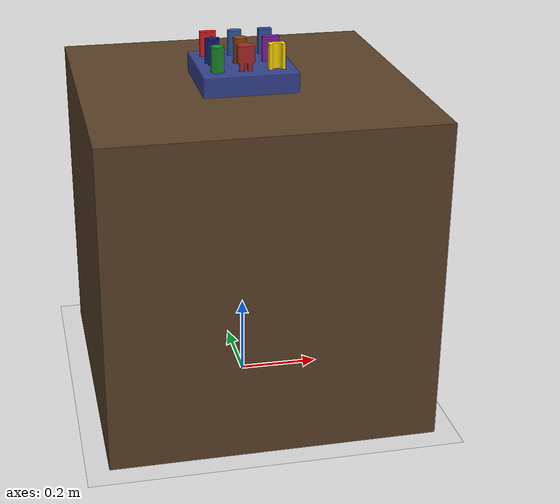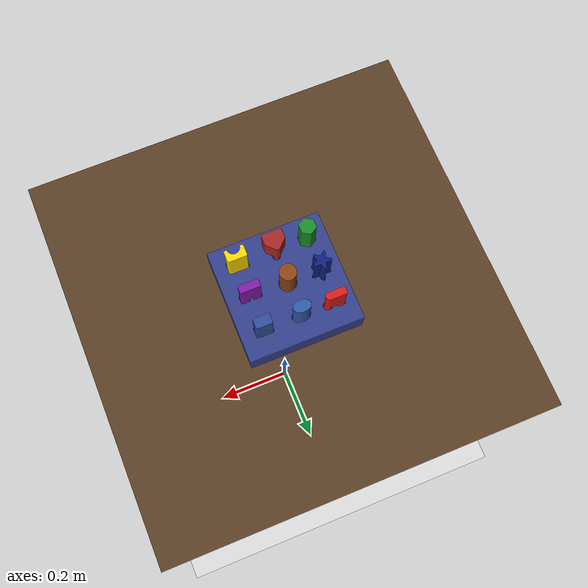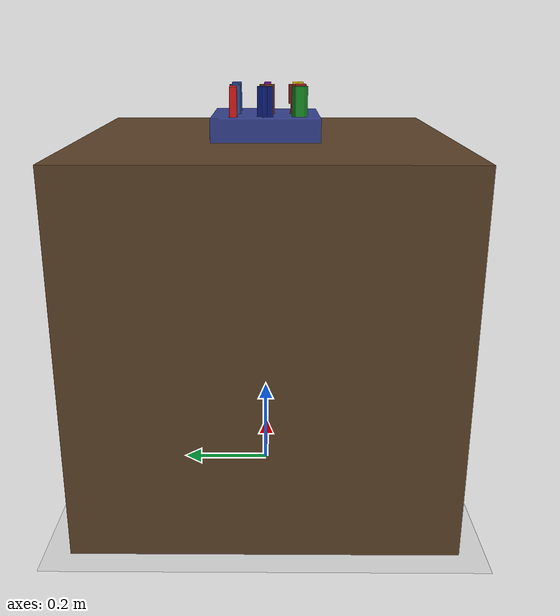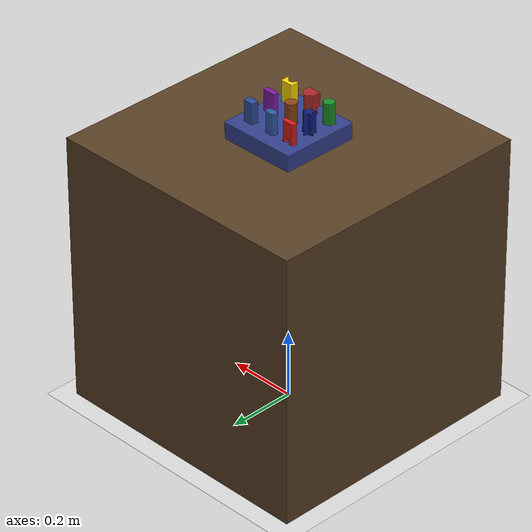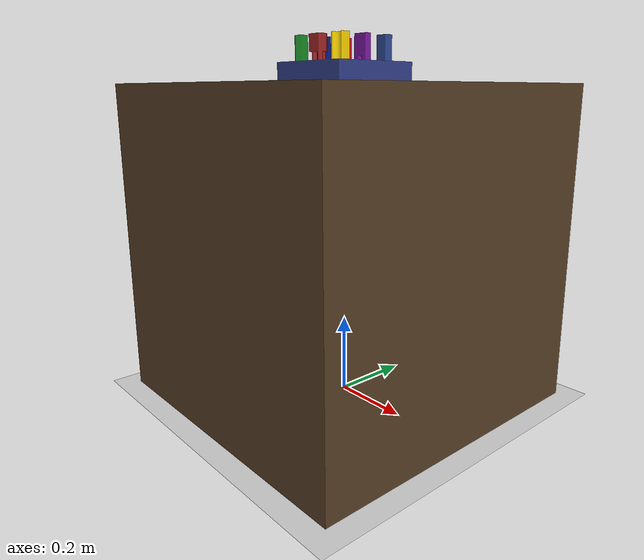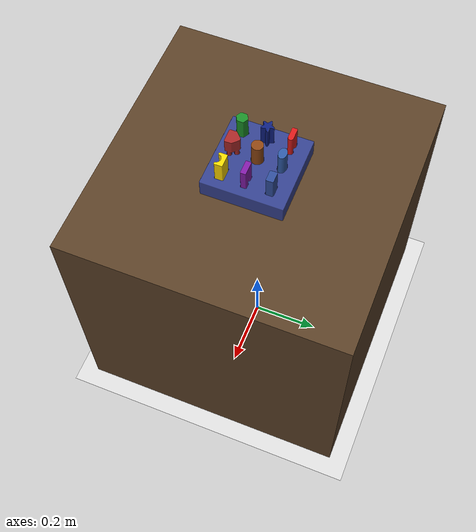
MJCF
<mujoco model="FMB S short">
  <compiler angle="radian" autolimits="true" meshdir="obj" texturedir="obj"/>
  <option integrator="RK4"/>
  <visual><global offwidth="1280" offheight="960"/></visual>
  <include file="floor_isaac.xml"/>
  <asset>
    <texture type="2d" name="light_wood" file="light_wood_v3.png"/>
    <material name="wt" texture="light_wood" specular="0.5" shininess="0.5" rgba="0.5 0.5 0.5 1"/>
    <mesh name="board_vis" file="hole_board_3/hole_board_3.obj"/>
    <mesh name="bc0" file="hole_board_3/hole_board_3_collision_0.obj"/>
    <mesh name="bc1" file="hole_board_3/hole_board_3_collision_1.obj"/>
    <mesh name="bc2" file="hole_board_3/hole_board_3_collision_10.obj"/>
    <mesh name="bc3" file="hole_board_3/hole_board_3_collision_100.obj"/>
    <mesh name="bc4" file="hole_board_3/hole_board_3_collision_101.obj"/>
    <mesh name="bc5" file="hole_board_3/hole_board_3_collision_102.obj"/>
    <mesh name="bc6" file="hole_board_3/hole_board_3_collision_103.obj"/>
    <mesh name="bc7" file="hole_board_3/hole_board_3_collision_104.obj"/>
    <mesh name="bc8" file="hole_board_3/hole_board_3_collision_105.obj"/>
    <mesh name="bc9" file="hole_board_3/hole_board_3_collision_106.obj"/>
    <mesh name="bc10" file="hole_board_3/hole_board_3_collision_107.obj"/>
    <mesh name="bc11" file="hole_board_3/hole_board_3_collision_108.obj"/>
    <mesh name="bc12" file="hole_board_3/hole_board_3_collision_109.obj"/>
    <mesh name="bc13" file="hole_board_3/hole_board_3_collision_11.obj"/>
    <mesh name="bc14" file="hole_board_3/hole_board_3_collision_110.obj"/>
    <mesh name="bc15" file="hole_board_3/hole_board_3_collision_111.obj"/>
    <mesh name="bc16" file="hole_board_3/hole_board_3_collision_112.obj"/>
    <mesh name="bc17" file="hole_board_3/hole_board_3_collision_113.obj"/>
    <mesh name="bc18" file="hole_board_3/hole_board_3_collision_114.obj"/>
    <mesh name="bc19" file="hole_board_3/hole_board_3_collision_115.obj"/>
    <mesh name="bc20" file="hole_board_3/hole_board_3_collision_116.obj"/>
    <mesh name="bc21" file="hole_board_3/hole_board_3_collision_117.obj"/>
    <mesh name="bc22" file="hole_board_3/hole_board_3_collision_118.obj"/>
    <mesh name="bc23" file="hole_board_3/hole_board_3_collision_119.obj"/>
    <mesh name="bc24" file="hole_board_3/hole_board_3_collision_12.obj"/>
    <mesh name="bc25" file="hole_board_3/hole_board_3_collision_120.obj"/>
    <mesh name="bc26" file="hole_board_3/hole_board_3_collision_121.obj"/>
    <mesh name="bc27" file="hole_board_3/hole_board_3_collision_122.obj"/>
    <mesh name="bc28" file="hole_board_3/hole_board_3_collision_123.obj"/>
    <mesh name="bc29" file="hole_board_3/hole_board_3_collision_124.obj"/>
    <mesh name="bc30" file="hole_board_3/hole_board_3_collision_125.obj"/>
    <mesh name="bc31" file="hole_board_3/hole_board_3_collision_126.obj"/>
    <mesh name="bc32" file="hole_board_3/hole_board_3_collision_127.obj"/>
    <mesh name="bc33" file="hole_board_3/hole_board_3_collision_128.obj"/>
    <mesh name="bc34" file="hole_board_3/hole_board_3_collision_129.obj"/>
    <mesh name="bc35" file="hole_board_3/hole_board_3_collision_13.obj"/>
    <mesh name="bc36" file="hole_board_3/hole_board_3_collision_130.obj"/>
    <mesh name="bc37" file="hole_board_3/hole_board_3_collision_14.obj"/>
    <mesh name="bc38" file="hole_board_3/hole_board_3_collision_15.obj"/>
    <mesh name="bc39" file="hole_board_3/hole_board_3_collision_16.obj"/>
    <mesh name="bc40" file="hole_board_3/hole_board_3_collision_17.obj"/>
    <mesh name="bc41" file="hole_board_3/hole_board_3_collision_18.obj"/>
    <mesh name="bc42" file="hole_board_3/hole_board_3_collision_19.obj"/>
    <mesh name="bc43" file="hole_board_3/hole_board_3_collision_2.obj"/>
    <mesh name="bc44" file="hole_board_3/hole_board_3_collision_20.obj"/>
    <mesh name="bc45" file="hole_board_3/hole_board_3_collision_21.obj"/>
    <mesh name="bc46" file="hole_board_3/hole_board_3_collision_22.obj"/>
    <mesh name="bc47" file="hole_board_3/hole_board_3_collision_23.obj"/>
    <mesh name="bc48" file="hole_board_3/hole_board_3_collision_24.obj"/>
    <mesh name="bc49" file="hole_board_3/hole_board_3_collision_25.obj"/>
    <mesh name="bc50" file="hole_board_3/hole_board_3_collision_26.obj"/>
    <mesh name="bc51" file="hole_board_3/hole_board_3_collision_27.obj"/>
    <mesh name="bc52" file="hole_board_3/hole_board_3_collision_28.obj"/>
    <mesh name="bc53" file="hole_board_3/hole_board_3_collision_29.obj"/>
    <mesh name="bc54" file="hole_board_3/hole_board_3_collision_3.obj"/>
    <mesh name="bc55" file="hole_board_3/hole_board_3_collision_30.obj"/>
    <mesh name="bc56" file="hole_board_3/hole_board_3_collision_31.obj"/>
    <mesh name="bc57" file="hole_board_3/hole_board_3_collision_32.obj"/>
    <mesh name="bc58" file="hole_board_3/hole_board_3_collision_33.obj"/>
    <mesh name="bc59" file="hole_board_3/hole_board_3_collision_34.obj"/>
    <mesh name="bc60" file="hole_board_3/hole_board_3_collision_35.obj"/>
    <mesh name="bc61" file="hole_board_3/hole_board_3_collision_36.obj"/>
    <mesh name="bc62" file="hole_board_3/hole_board_3_collision_37.obj"/>
    <mesh name="bc63" file="hole_board_3/hole_board_3_collision_38.obj"/>
    <mesh name="bc64" file="hole_board_3/hole_board_3_collision_39.obj"/>
    <mesh name="bc65" file="hole_board_3/hole_board_3_collision_4.obj"/>
    <mesh name="bc66" file="hole_board_3/hole_board_3_collision_40.obj"/>
    <mesh name="bc67" file="hole_board_3/hole_board_3_collision_41.obj"/>
    <mesh name="bc68" file="hole_board_3/hole_board_3_collision_42.obj"/>
    <mesh name="bc69" file="hole_board_3/hole_board_3_collision_43.obj"/>
    <mesh name="bc70" file="hole_board_3/hole_board_3_collision_44.obj"/>
    <mesh name="bc71" file="hole_board_3/hole_board_3_collision_45.obj"/>
    <mesh name="bc72" file="hole_board_3/hole_board_3_collision_46.obj"/>
    <mesh name="bc73" file="hole_board_3/hole_board_3_collision_47.obj"/>
    <mesh name="bc74" file="hole_board_3/hole_board_3_collision_48.obj"/>
    <mesh name="bc75" file="hole_board_3/hole_board_3_collision_49.obj"/>
    <mesh name="bc76" file="hole_board_3/hole_board_3_collision_5.obj"/>
    <mesh name="bc77" file="hole_board_3/hole_board_3_collision_50.obj"/>
    <mesh name="bc78" file="hole_board_3/hole_board_3_collision_51.obj"/>
    <mesh name="bc79" file="hole_board_3/hole_board_3_collision_52.obj"/>
    <mesh name="bc80" file="hole_board_3/hole_board_3_collision_53.obj"/>
    <mesh name="bc81" file="hole_board_3/hole_board_3_collision_54.obj"/>
    <mesh name="bc82" file="hole_board_3/hole_board_3_collision_55.obj"/>
    <mesh name="bc83" file="hole_board_3/hole_board_3_collision_56.obj"/>
    <mesh name="bc84" file="hole_board_3/hole_board_3_collision_57.obj"/>
    <mesh name="bc85" file="hole_board_3/hole_board_3_collision_58.obj"/>
    <mesh name="bc86" file="hole_board_3/hole_board_3_collision_59.obj"/>
    <mesh name="bc87" file="hole_board_3/hole_board_3_collision_6.obj"/>
    <mesh name="bc88" file="hole_board_3/hole_board_3_collision_60.obj"/>
    <mesh name="bc89" file="hole_board_3/hole_board_3_collision_61.obj"/>
    <mesh name="bc90" file="hole_board_3/hole_board_3_collision_62.obj"/>
    <mesh name="bc91" file="hole_board_3/hole_board_3_collision_63.obj"/>
    <mesh name="bc92" file="hole_board_3/hole_board_3_collision_64.obj"/>
    <mesh name="bc93" file="hole_board_3/hole_board_3_collision_65.obj"/>
    <mesh name="bc94" file="hole_board_3/hole_board_3_collision_66.obj"/>
    <mesh name="bc95" file="hole_board_3/hole_board_3_collision_67.obj"/>
    <mesh name="bc96" file="hole_board_3/hole_board_3_collision_68.obj"/>
    <mesh name="bc97" file="hole_board_3/hole_board_3_collision_69.obj"/>
    <mesh name="bc98" file="hole_board_3/hole_board_3_collision_7.obj"/>
    <mesh name="bc99" file="hole_board_3/hole_board_3_collision_70.obj"/>
    <mesh name="bc100" file="hole_board_3/hole_board_3_collision_71.obj"/>
    <mesh name="bc101" file="hole_board_3/hole_board_3_collision_72.obj"/>
    <mesh name="bc102" file="hole_board_3/hole_board_3_collision_73.obj"/>
    <mesh name="bc103" file="hole_board_3/hole_board_3_collision_74.obj"/>
    <mesh name="bc104" file="hole_board_3/hole_board_3_collision_75.obj"/>
    <mesh name="bc105" file="hole_board_3/hole_board_3_collision_76.obj"/>
    <mesh name="bc106" file="hole_board_3/hole_board_3_collision_77.obj"/>
    <mesh name="bc107" file="hole_board_3/hole_board_3_collision_78.obj"/>
    <mesh name="bc108" file="hole_board_3/hole_board_3_collision_79.obj"/>
    <mesh name="bc109" file="hole_board_3/hole_board_3_collision_8.obj"/>
    <mesh name="bc110" file="hole_board_3/hole_board_3_collision_80.obj"/>
    <mesh name="bc111" file="hole_board_3/hole_board_3_collision_81.obj"/>
    <mesh name="bc112" file="hole_board_3/hole_board_3_collision_82.obj"/>
    <mesh name="bc113" file="hole_board_3/hole_board_3_collision_83.obj"/>
    <mesh name="bc114" file="hole_board_3/hole_board_3_collision_84.obj"/>
    <mesh name="bc115" file="hole_board_3/hole_board_3_collision_85.obj"/>
    <mesh name="bc116" file="hole_board_3/hole_board_3_collision_86.obj"/>
    <mesh name="bc117" file="hole_board_3/hole_board_3_collision_87.obj"/>
    <mesh name="bc118" file="hole_board_3/hole_board_3_collision_88.obj"/>
    <mesh name="bc119" file="hole_board_3/hole_board_3_collision_89.obj"/>
    <mesh name="bc120" file="hole_board_3/hole_board_3_collision_9.obj"/>
    <mesh name="bc121" file="hole_board_3/hole_board_3_collision_90.obj"/>
    <mesh name="bc122" file="hole_board_3/hole_board_3_collision_91.obj"/>
    <mesh name="bc123" file="hole_board_3/hole_board_3_collision_92.obj"/>
    <mesh name="bc124" file="hole_board_3/hole_board_3_collision_93.obj"/>
    <mesh name="bc125" file="hole_board_3/hole_board_3_collision_94.obj"/>
    <mesh name="bc126" file="hole_board_3/hole_board_3_collision_95.obj"/>
    <mesh name="bc127" file="hole_board_3/hole_board_3_collision_96.obj"/>
    <mesh name="bc128" file="hole_board_3/hole_board_3_collision_97.obj"/>
    <mesh name="bc129" file="hole_board_3/hole_board_3_collision_98.obj"/>
    <mesh name="bc130" file="hole_board_3/hole_board_3_collision_99.obj"/>
    <mesh name="peg_circle_S_short" file="peg_circle_S_short/peg_circle_S_short.obj"/>
    <mesh name="peg_circle_S_short_c0" file="peg_circle_S_short/peg_circle_S_short_collision_0.obj"/>
    <mesh name="peg_oval_S_short" file="peg_oval_S_short/peg_oval_S_short.obj"/>
    <mesh name="peg_oval_S_short_c0" file="peg_oval_S_short/peg_oval_S_short_collision_0.obj"/>
    <mesh name="peg_rectangle_S_short" file="peg_rectangle_S_short/peg_rectangle_S_short.obj"/>
    <mesh name="peg_rectangle_S_short_c0" file="peg_rectangle_S_short/peg_rectangle_S_short_collision_0.obj"/>
    <mesh name="peg_hexagon_S_short" file="peg_hexagon_S_short/peg_hexagon_S_short.obj"/>
    <mesh name="peg_hexagon_S_short_c0" file="peg_hexagon_S_short/peg_hexagon_S_short_collision_0.obj"/>
    <mesh name="peg_arch_S_short" file="peg_arch_S_short/peg_arch_S_short.obj"/>
    <mesh name="peg_arch_S_short_c0" file="peg_arch_S_short/peg_arch_S_short_collision_0.obj"/>
    <mesh name="peg_arch_S_short_c1" file="peg_arch_S_short/peg_arch_S_short_collision_1.obj"/>
    <mesh name="peg_star_S_short" file="peg_star_S_short/peg_star_S_short.obj"/>
    <mesh name="peg_star_S_short_c0" file="peg_star_S_short/peg_star_S_short_collision_0.obj"/>
    <mesh name="peg_star_S_short_c1" file="peg_star_S_short/peg_star_S_short_collision_1.obj"/>
    <mesh name="peg_star_S_short_c2" file="peg_star_S_short/peg_star_S_short_collision_2.obj"/>
    <mesh name="peg_star_S_short_c3" file="peg_star_S_short/peg_star_S_short_collision_3.obj"/>
    <mesh name="peg_3prong_S_short" file="peg_3prong_S_short/peg_3prong_S_short.obj"/>
    <mesh name="peg_3prong_S_short_c0" file="peg_3prong_S_short/peg_3prong_S_short_collision_0.obj"/>
    <mesh name="peg_3prong_S_short_c1" file="peg_3prong_S_short/peg_3prong_S_short_collision_1.obj"/>
    <mesh name="peg_3prong_S_short_c2" file="peg_3prong_S_short/peg_3prong_S_short_collision_2.obj"/>
    <mesh name="peg_3prong_S_short_c3" file="peg_3prong_S_short/peg_3prong_S_short_collision_3.obj"/>
    <mesh name="peg_doublesquare_S_short" file="peg_doublesquare_S_short/peg_doublesquare_S_short.obj"/>
    <mesh name="peg_doublesquare_S_short_c0" file="peg_doublesquare_S_short/peg_doublesquare_S_short_collision_0.obj"/>
    <mesh name="peg_doublesquare_S_short_c1" file="peg_doublesquare_S_short/peg_doublesquare_S_short_collision_1.obj"/>
    <mesh name="peg_doublesquare_S_short_c2" file="peg_doublesquare_S_short/peg_doublesquare_S_short_collision_2.obj"/>
    <mesh name="peg_squarecircle_S_short" file="peg_squarecircle_S_short/peg_squarecircle_S_short.obj"/>
    <mesh name="peg_squarecircle_S_short_c0" file="peg_squarecircle_S_short/peg_squarecircle_S_short_collision_0.obj"/>
    <mesh name="peg_squarecircle_S_short_c1" file="peg_squarecircle_S_short/peg_squarecircle_S_short_collision_1.obj"/>
    <mesh name="peg_squarecircle_S_short_c2" file="peg_squarecircle_S_short/peg_squarecircle_S_short_collision_2.obj"/>
  </asset>
  <worldbody>
    <body name="table"><geom type="box" size="0.4 0.4 0.4" pos="0 0 0.4" material="wt" mass="100"/></body>
    <body name="board" pos="0 0 0.8">
      <geom mesh="board_vis" group="2" type="mesh" contype="0" conaffinity="0" rgba="0.2 0.25 0.55 1"/>
      <geom mesh="bc0" type="mesh" rgba="0 0 0 0"/>
      <geom mesh="bc1" type="mesh" rgba="0 0 0 0"/>
      <geom mesh="bc2" type="mesh" rgba="0 0 0 0"/>
      <geom mesh="bc3" type="mesh" rgba="0 0 0 0"/>
      <geom mesh="bc4" type="mesh" rgba="0 0 0 0"/>
      <geom mesh="bc5" type="mesh" rgba="0 0 0 0"/>
      <geom mesh="bc6" type="mesh" rgba="0 0 0 0"/>
      <geom mesh="bc7" type="mesh" rgba="0 0 0 0"/>
      <geom mesh="bc8" type="mesh" rgba="0 0 0 0"/>
      <geom mesh="bc9" type="mesh" rgba="0 0 0 0"/>
      <geom mesh="bc10" type="mesh" rgba="0 0 0 0"/>
      <geom mesh="bc11" type="mesh" rgba="0 0 0 0"/>
      <geom mesh="bc12" type="mesh" rgba="0 0 0 0"/>
      <geom mesh="bc13" type="mesh" rgba="0 0 0 0"/>
      <geom mesh="bc14" type="mesh" rgba="0 0 0 0"/>
      <geom mesh="bc15" type="mesh" rgba="0 0 0 0"/>
      <geom mesh="bc16" type="mesh" rgba="0 0 0 0"/>
      <geom mesh="bc17" type="mesh" rgba="0 0 0 0"/>
      <geom mesh="bc18" type="mesh" rgba="0 0 0 0"/>
      <geom mesh="bc19" type="mesh" rgba="0 0 0 0"/>
      <geom mesh="bc20" type="mesh" rgba="0 0 0 0"/>
      <geom mesh="bc21" type="mesh" rgba="0 0 0 0"/>
      <geom mesh="bc22" type="mesh" rgba="0 0 0 0"/>
      <geom mesh="bc23" type="mesh" rgba="0 0 0 0"/>
      <geom mesh="bc24" type="mesh" rgba="0 0 0 0"/>
      <geom mesh="bc25" type="mesh" rgba="0 0 0 0"/>
      <geom mesh="bc26" type="mesh" rgba="0 0 0 0"/>
      <geom mesh="bc27" type="mesh" rgba="0 0 0 0"/>
      <geom mesh="bc28" type="mesh" rgba="0 0 0 0"/>
      <geom mesh="bc29" type="mesh" rgba="0 0 0 0"/>
      <geom mesh="bc30" type="mesh" rgba="0 0 0 0"/>
      <geom mesh="bc31" type="mesh" rgba="0 0 0 0"/>
      <geom mesh="bc32" type="mesh" rgba="0 0 0 0"/>
      <geom mesh="bc33" type="mesh" rgba="0 0 0 0"/>
      <geom mesh="bc34" type="mesh" rgba="0 0 0 0"/>
      <geom mesh="bc35" type="mesh" rgba="0 0 0 0"/>
      <geom mesh="bc36" type="mesh" rgba="0 0 0 0"/>
      <geom mesh="bc37" type="mesh" rgba="0 0 0 0"/>
      <geom mesh="bc38" type="mesh" rgba="0 0 0 0"/>
      <geom mesh="bc39" type="mesh" rgba="0 0 0 0"/>
      <geom mesh="bc40" type="mesh" rgba="0 0 0 0"/>
      <geom mesh="bc41" type="mesh" rgba="0 0 0 0"/>
      <geom mesh="bc42" type="mesh" rgba="0 0 0 0"/>
      <geom mesh="bc43" type="mesh" rgba="0 0 0 0"/>
      <geom mesh="bc44" type="mesh" rgba="0 0 0 0"/>
      <geom mesh="bc45" type="mesh" rgba="0 0 0 0"/>
      <geom mesh="bc46" type="mesh" rgba="0 0 0 0"/>
      <geom mesh="bc47" type="mesh" rgba="0 0 0 0"/>
      <geom mesh="bc48" type="mesh" rgba="0 0 0 0"/>
      <geom mesh="bc49" type="mesh" rgba="0 0 0 0"/>
      <geom mesh="bc50" type="mesh" rgba="0 0 0 0"/>
      <geom mesh="bc51" type="mesh" rgba="0 0 0 0"/>
      <geom mesh="bc52" type="mesh" rgba="0 0 0 0"/>
      <geom mesh="bc53" type="mesh" rgba="0 0 0 0"/>
      <geom mesh="bc54" type="mesh" rgba="0 0 0 0"/>
      <geom mesh="bc55" type="mesh" rgba="0 0 0 0"/>
      <geom mesh="bc56" type="mesh" rgba="0 0 0 0"/>
      <geom mesh="bc57" type="mesh" rgba="0 0 0 0"/>
      <geom mesh="bc58" type="mesh" rgba="0 0 0 0"/>
      <geom mesh="bc59" type="mesh" rgba="0 0 0 0"/>
      <geom mesh="bc60" type="mesh" rgba="0 0 0 0"/>
      <geom mesh="bc61" type="mesh" rgba="0 0 0 0"/>
      <geom mesh="bc62" type="mesh" rgba="0 0 0 0"/>
      <geom mesh="bc63" type="mesh" rgba="0 0 0 0"/>
      <geom mesh="bc64" type="mesh" rgba="0 0 0 0"/>
      <geom mesh="bc65" type="mesh" rgba="0 0 0 0"/>
      <geom mesh="bc66" type="mesh" rgba="0 0 0 0"/>
      <geom mesh="bc67" type="mesh" rgba="0 0 0 0"/>
      <geom mesh="bc68" type="mesh" rgba="0 0 0 0"/>
      <geom mesh="bc69" type="mesh" rgba="0 0 0 0"/>
      <geom mesh="bc70" type="mesh" rgba="0 0 0 0"/>
      <geom mesh="bc71" type="mesh" rgba="0 0 0 0"/>
      <geom mesh="bc72" type="mesh" rgba="0 0 0 0"/>
      <geom mesh="bc73" type="mesh" rgba="0 0 0 0"/>
      <geom mesh="bc74" type="mesh" rgba="0 0 0 0"/>
      <geom mesh="bc75" type="mesh" rgba="0 0 0 0"/>
      <geom mesh="bc76" type="mesh" rgba="0 0 0 0"/>
      <geom mesh="bc77" type="mesh" rgba="0 0 0 0"/>
      <geom mesh="bc78" type="mesh" rgba="0 0 0 0"/>
      <geom mesh="bc79" type="mesh" rgba="0 0 0 0"/>
      <geom mesh="bc80" type="mesh" rgba="0 0 0 0"/>
      <geom mesh="bc81" type="mesh" rgba="0 0 0 0"/>
      <geom mesh="bc82" type="mesh" rgba="0 0 0 0"/>
      <geom mesh="bc83" type="mesh" rgba="0 0 0 0"/>
      <geom mesh="bc84" type="mesh" rgba="0 0 0 0"/>
      <geom mesh="bc85" type="mesh" rgba="0 0 0 0"/>
      <geom mesh="bc86" type="mesh" rgba="0 0 0 0"/>
      <geom mesh="bc87" type="mesh" rgba="0 0 0 0"/>
      <geom mesh="bc88" type="mesh" rgba="0 0 0 0"/>
      <geom mesh="bc89" type="mesh" rgba="0 0 0 0"/>
      <geom mesh="bc90" type="mesh" rgba="0 0 0 0"/>
      <geom mesh="bc91" type="mesh" rgba="0 0 0 0"/>
      <geom mesh="bc92" type="mesh" rgba="0 0 0 0"/>
      <geom mesh="bc93" type="mesh" rgba="0 0 0 0"/>
      <geom mesh="bc94" type="mesh" rgba="0 0 0 0"/>
      <geom mesh="bc95" type="mesh" rgba="0 0 0 0"/>
      <geom mesh="bc96" type="mesh" rgba="0 0 0 0"/>
      <geom mesh="bc97" type="mesh" rgba="0 0 0 0"/>
      <geom mesh="bc98" type="mesh" rgba="0 0 0 0"/>
      <geom mesh="bc99" type="mesh" rgba="0 0 0 0"/>
      <geom mesh="bc100" type="mesh" rgba="0 0 0 0"/>
      <geom mesh="bc101" type="mesh" rgba="0 0 0 0"/>
      <geom mesh="bc102" type="mesh" rgba="0 0 0 0"/>
      <geom mesh="bc103" type="mesh" rgba="0 0 0 0"/>
      <geom mesh="bc104" type="mesh" rgba="0 0 0 0"/>
      <geom mesh="bc105" type="mesh" rgba="0 0 0 0"/>
      <geom mesh="bc106" type="mesh" rgba="0 0 0 0"/>
      <geom mesh="bc107" type="mesh" rgba="0 0 0 0"/>
      <geom mesh="bc108" type="mesh" rgba="0 0 0 0"/>
      <geom mesh="bc109" type="mesh" rgba="0 0 0 0"/>
      <geom mesh="bc110" type="mesh" rgba="0 0 0 0"/>
      <geom mesh="bc111" type="mesh" rgba="0 0 0 0"/>
      <geom mesh="bc112" type="mesh" rgba="0 0 0 0"/>
      <geom mesh="bc113" type="mesh" rgba="0 0 0 0"/>
      <geom mesh="bc114" type="mesh" rgba="0 0 0 0"/>
      <geom mesh="bc115" type="mesh" rgba="0 0 0 0"/>
      <geom mesh="bc116" type="mesh" rgba="0 0 0 0"/>
      <geom mesh="bc117" type="mesh" rgba="0 0 0 0"/>
      <geom mesh="bc118" type="mesh" rgba="0 0 0 0"/>
      <geom mesh="bc119" type="mesh" rgba="0 0 0 0"/>
      <geom mesh="bc120" type="mesh" rgba="0 0 0 0"/>
      <geom mesh="bc121" type="mesh" rgba="0 0 0 0"/>
      <geom mesh="bc122" type="mesh" rgba="0 0 0 0"/>
      <geom mesh="bc123" type="mesh" rgba="0 0 0 0"/>
      <geom mesh="bc124" type="mesh" rgba="0 0 0 0"/>
      <geom mesh="bc125" type="mesh" rgba="0 0 0 0"/>
      <geom mesh="bc126" type="mesh" rgba="0 0 0 0"/>
      <geom mesh="bc127" type="mesh" rgba="0 0 0 0"/>
      <geom mesh="bc128" type="mesh" rgba="0 0 0 0"/>
      <geom mesh="bc129" type="mesh" rgba="0 0 0 0"/>
      <geom mesh="bc130" type="mesh" rgba="0 0 0 0"/>
      <geom type="box" pos="0 0 0.005" size="0.115 0.115 0.005" rgba="0 0 0 0"/>
      <geom type="box" pos="-0.112 0 0.025" size="0.003 0.115 0.025" rgba="0 0 0 0"/>
      <geom type="box" pos="0.112 0 0.025" size="0.003 0.115 0.025" rgba="0 0 0 0"/>
      <geom type="box" pos="0 0.112 0.025" size="0.115 0.003 0.025" rgba="0 0 0 0"/>
      <geom type="box" pos="0 -0.112 0.025" size="0.115 0.003 0.025" rgba="0 0 0 0"/>
      <geom type="box" pos="-0.04 0.0000 0.025" size="0.003 0.1150 0.025" rgba="0 0 0 0"/>
      <geom type="box" pos="0.0295 0.0000 0.025" size="0.003 0.1150 0.025" rgba="0 0 0 0"/>
      <geom type="box" pos="0.0000 -0.035 0.025" size="0.1150 0.003 0.025" rgba="0 0 0 0"/>
      <geom type="box" pos="0.0000 0.036 0.025" size="0.1150 0.003 0.025" rgba="0 0 0 0"/>
    </body>
    <body name="circle" pos="-0.006999999999999909 -0.002499999999999905 0.811">
      <joint type="free"/>
      <geom mesh="peg_circle_S_short" group="2" type="mesh" contype="0" conaffinity="0" rgba="0.55 0.27 0.07 1"/>
      <geom mesh="peg_circle_S_short_c0" type="mesh" rgba="0 0 0 0"/>
    </body>
    <body name="oval" pos="-0.006499999999999909 0.06625000000000016 0.811">
      <joint type="free"/>
      <geom mesh="peg_oval_S_short" group="2" type="mesh" contype="0" conaffinity="0" rgba="0.18 0.35 0.65 1"/>
      <geom mesh="peg_oval_S_short_c0" type="mesh" rgba="0 0 0 0"/>
    </body>
    <body name="rectangle" pos="0.06900000000000016 0.06550000000000016 0.811">
      <joint type="free"/>
      <geom mesh="peg_rectangle_S_short" group="2" type="mesh" contype="0" conaffinity="0" rgba="0.18 0.3 0.6 1"/>
      <geom mesh="peg_rectangle_S_short_c0" type="mesh" rgba="0 0 0 0"/>
    </body>
    <body name="hexagon" pos="-0.07399999999999997 -0.07124999999999997 0.811">
      <joint type="free"/>
      <geom mesh="peg_hexagon_S_short" group="2" type="mesh" contype="0" conaffinity="0" rgba="0.1 0.55 0.15 1"/>
      <geom mesh="peg_hexagon_S_short_c0" type="mesh" rgba="0 0 0 0"/>
    </body>
    <body name="arch" pos="0.06800000000000016 -0.07149999999999997 0.811">
      <joint type="free"/>
      <geom mesh="peg_arch_S_short" group="2" type="mesh" contype="0" conaffinity="0" rgba="1.0 0.85 0.0 1"/>
      <geom mesh="peg_arch_S_short_c0" type="mesh" rgba="0 0 0 0"/>
      <geom mesh="peg_arch_S_short_c1" type="mesh" rgba="0 0 0 0"/>
    </body>
    <body name="star" pos="-0.07299999999999997 0.001000000000000098 0.811">
      <joint type="free"/>
      <geom mesh="peg_star_S_short" group="2" type="mesh" contype="0" conaffinity="0" rgba="0.05 0.12 0.5 1"/>
      <geom mesh="peg_star_S_short_c0" type="mesh" rgba="0 0 0 0"/>
      <geom mesh="peg_star_S_short_c1" type="mesh" rgba="0 0 0 0"/>
      <geom mesh="peg_star_S_short_c2" type="mesh" rgba="0 0 0 0"/>
      <geom mesh="peg_star_S_short_c3" type="mesh" rgba="0 0 0 0"/>
    </body>
    <body name="3prong" pos="-0.007249999999999909 -0.06799999999999996 0.911" quat="0 1 0 0">
      <joint type="free"/>
      <geom mesh="peg_3prong_S_short" group="2" type="mesh" contype="0" conaffinity="0" rgba="0.65 0.15 0.15 1"/>
      <geom mesh="peg_3prong_S_short_c0" type="mesh" rgba="0 0 0 0"/>
      <geom mesh="peg_3prong_S_short_c1" type="mesh" rgba="0 0 0 0"/>
      <geom mesh="peg_3prong_S_short_c2" type="mesh" rgba="0 0 0 0"/>
      <geom mesh="peg_3prong_S_short_c3" type="mesh" rgba="0 0 0 0"/>
    </body>
    <body name="doublesquare" pos="0.06775000000000016 -0.003999999999999906 0.911" quat="0 1 0 0">
      <joint type="free"/>
      <geom mesh="peg_doublesquare_S_short" group="2" type="mesh" contype="0" conaffinity="0" rgba="0.5 0.1 0.65 1"/>
      <geom mesh="peg_doublesquare_S_short_c0" type="mesh" rgba="0 0 0 0"/>
      <geom mesh="peg_doublesquare_S_short_c1" type="mesh" rgba="0 0 0 0"/>
      <geom mesh="peg_doublesquare_S_short_c2" type="mesh" rgba="0 0 0 0"/>
    </body>
    <body name="squarecircle" pos="-0.07199994174999996 0.06775000000000016 0.911" quat="0 1 0 0">
      <joint type="free"/>
      <geom mesh="peg_squarecircle_S_short" group="2" type="mesh" contype="0" conaffinity="0" rgba="0.85 0.1 0.1 1"/>
      <geom mesh="peg_squarecircle_S_short_c0" type="mesh" rgba="0 0 0 0"/>
      <geom mesh="peg_squarecircle_S_short_c1" type="mesh" rgba="0 0 0 0"/>
      <geom mesh="peg_squarecircle_S_short_c2" type="mesh" rgba="0 0 0 0"/>
    </body>
  </worldbody>
  <keyframe><key name="aligned" qpos="-0.007 -0.0025 0.809892 1 1.59954e-13 -9.52351e-15 1.2928e-16 -0.00636328 0.0662985 0.809915 1 -0.000341885 0.000720369 -0.000201734 0.0689616 0.0651843 0.809895 1 0.000697898 -9.89082e-05 -0.000445194 -0.0740615 -0.07136 0.809912 1 0.000537686 -0.000475393 -3.19934e-06 0.0679271 -0.0697681 0.809909 1 0.000793377 -0.00031504 9.80976e-05 -0.0730094 0.00100244 0.809979 1 -9.13469e-05 -0.000373566 1.62839e-05 -0.00724827 -0.0680099 0.909964 -4.24111e-05 1 1.33212e-09 -7.3916e-06 0.0677486 -0.00420318 0.909951 -0.000745187 1 0.000371328 3.28547e-06 -0.0720282 0.0672312 0.909938 -0.000791845 0.999997 -0.00226306 9.45103e-05"/></keyframe>
</mujoco>

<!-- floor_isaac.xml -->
<mujoco model="floor and sky (isaac style)">

  <visual>
    <headlight diffuse="0.55 0.55 0.55" ambient="0.3 0.3 0.3" specular="0 0 0"/>
    <rgba haze="0.15 0.25 0.35 1"/>
  </visual>

  <asset>
    <!-- Sky -->
    <texture type="skybox" builtin="gradient" rgb1="0.3 0.5 0.7" rgb2="0 0 0" width="512" height="3072"/>
    <!-- Ground -->
    <texture type="2d" name="groundplane" builtin="checker" mark="edge" rgb1="0.9 0.9 0.9"
             rgb2="0.8 0.8 0.8" markrgb="0.8 0.8 0.8" width="1000" height="1000"/>
    <material name="groundplane" texture="groundplane" texuniform="true" texrepeat="1 1"
              reflectance="0.1"/>
  </asset>

  <worldbody>
    <light pos="1 -1 1.5" dir="-1 1 -1" diffuse="0.35 0.35 0.35" directional="true"/>
    <geom name="floor" group="1" size="0 0 0.05" type="plane" material="groundplane"/>
  </worldbody>

</mujoco>
